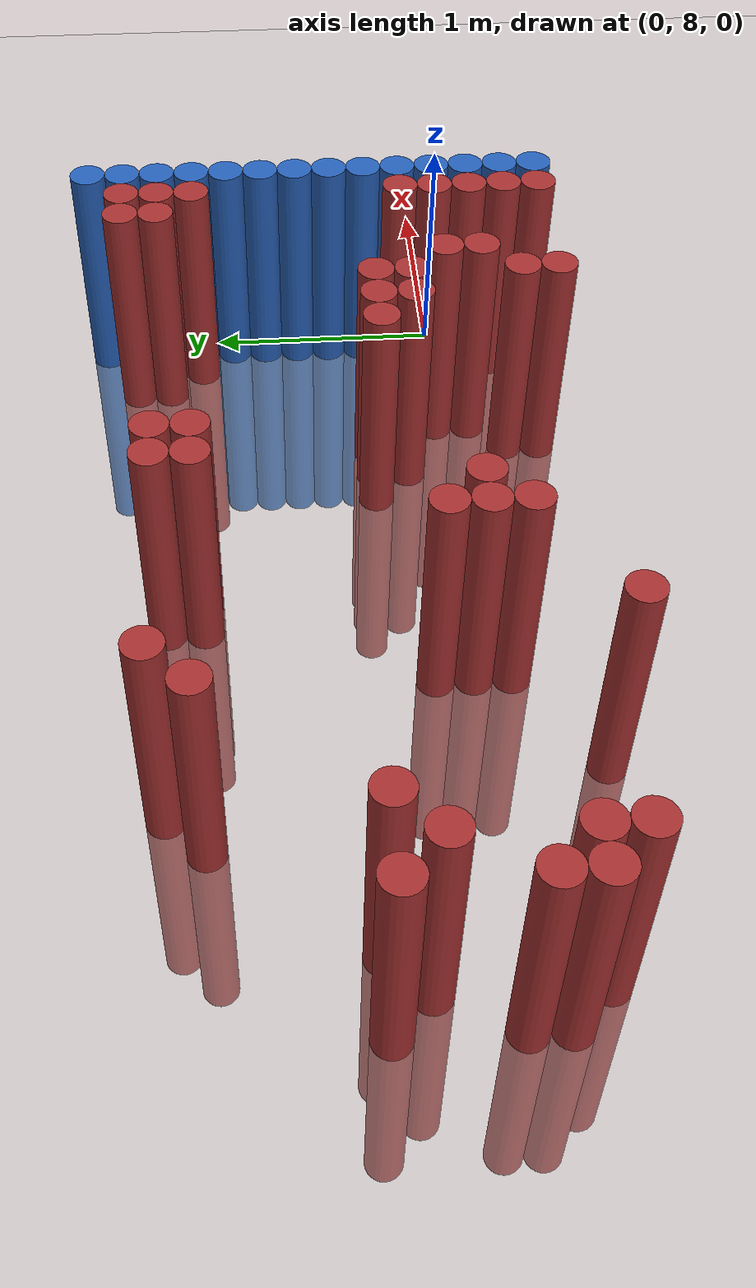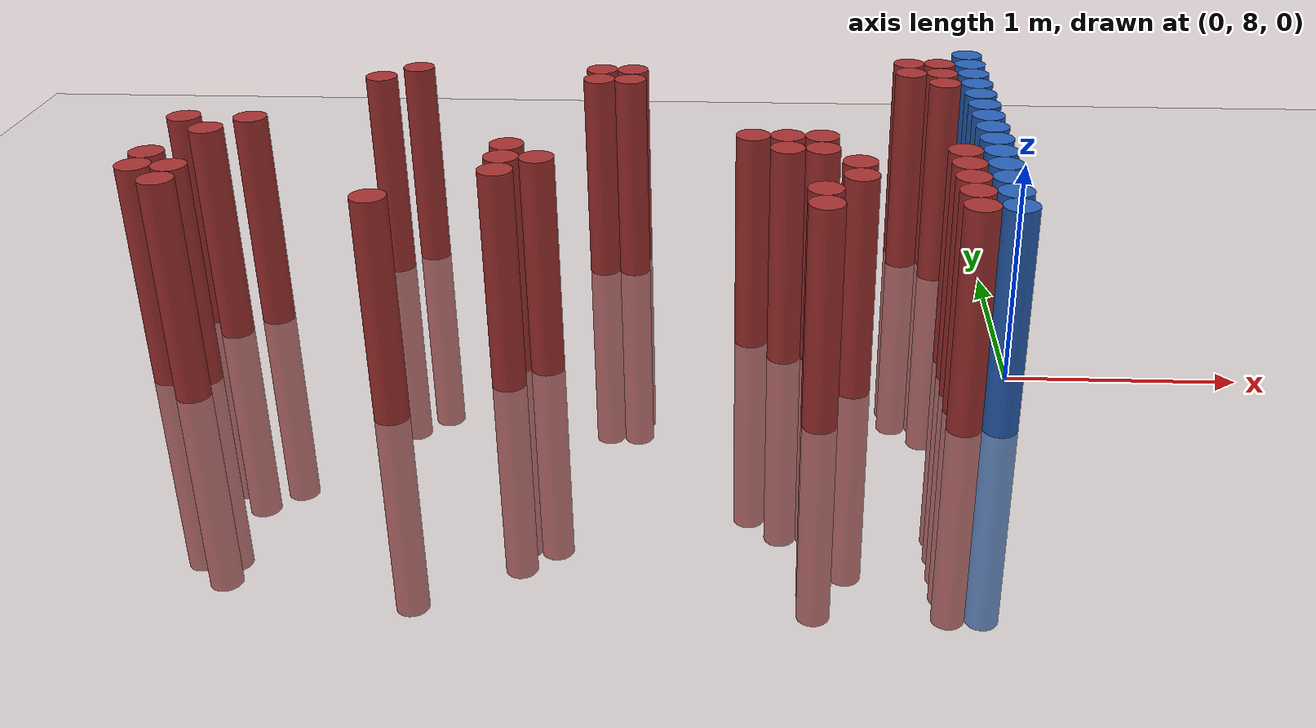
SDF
<sdf version="1.6">
 <world name="default">
  <model name="ground_plane">
   <static>1</static>
   <link name="link">
    <collision name="collision">
     <geometry><plane><normal>0 0 1</normal><size>100 100</size></plane></geometry>
     <surface><friction><ode><mu>100</mu><mu2>50</mu2></ode></friction></surface>
    </collision>
    <visual name="visual">
     <cast_shadows>0</cast_shadows>
     <geometry><plane><normal>0 0 1</normal><size>100 100</size></plane></geometry>
     <material>
      <script><uri>file://media/materials/scripts/gazebo.material</uri><name>Gazebo/Grey</name></script>
     </material>
    </visual>
   </link>
  </model>
  <model name="unit_cylinder_150">
   <static>1</static>
   <pose>-3.675000 7.875000 0.000000 0.000000 0.000000 0.000000</pose>
   <link name="link">
    <inertial>
     <mass>1</mass>
     <inertia><ixx>0.145833</ixx><ixy>0</ixy><ixz>0</ixz><iyy>0.145833</iyy><iyz>0</iyz><izz>0.125</izz></inertia>
    </inertial>
    <collision name="collision">
     <geometry><cylinder><radius>0.075000</radius><length>2</length></cylinder></geometry>
    </collision>
    <visual name="visual">
     <geometry><cylinder><radius>0.075000</radius><length>2</length></cylinder></geometry>
     <material>
      <ambient>0.648000 0.192000 0.192000 1</ambient>
      <diffuse>0.648000 0.192000 0.192000 1</diffuse>
     </material>
     <material>
      <script><name>Gazebo/Grey</name><uri>file://media/materials/scripts/gazebo.material</uri></script>
     </material>
    </visual>
   </link>
  </model>
  <model name="unit_cylinder_151">
   <static>1</static>
   <pose>-3.675000 8.025000 0.000000 0.000000 0.000000 0.000000</pose>
   <link name="link">
    <inertial>
     <mass>1</mass>
     <inertia><ixx>0.145833</ixx><ixy>0</ixy><ixz>0</ixz><iyy>0.145833</iyy><iyz>0</iyz><izz>0.125</izz></inertia>
    </inertial>
    <collision name="collision">
     <geometry><cylinder><radius>0.075000</radius><length>2</length></cylinder></geometry>
    </collision>
    <visual name="visual">
     <geometry><cylinder><radius>0.075000</radius><length>2</length></cylinder></geometry>
     <material>
      <ambient>0.648000 0.192000 0.192000 1</ambient>
      <diffuse>0.648000 0.192000 0.192000 1</diffuse>
     </material>
     <material>
      <script><name>Gazebo/Grey</name><uri>file://media/materials/scripts/gazebo.material</uri></script>
     </material>
    </visual>
   </link>
  </model>
  <model name="unit_cylinder_152">
   <static>1</static>
   <pose>-3.675000 8.475000 0.000000 0.000000 0.000000 0.000000</pose>
   <link name="link">
    <inertial>
     <mass>1</mass>
     <inertia><ixx>0.145833</ixx><ixy>0</ixy><ixz>0</ixz><iyy>0.145833</iyy><iyz>0</iyz><izz>0.125</izz></inertia>
    </inertial>
    <collision name="collision">
     <geometry><cylinder><radius>0.075000</radius><length>2</length></cylinder></geometry>
    </collision>
    <visual name="visual">
     <geometry><cylinder><radius>0.075000</radius><length>2</length></cylinder></geometry>
     <material>
      <ambient>0.648000 0.192000 0.192000 1</ambient>
      <diffuse>0.648000 0.192000 0.192000 1</diffuse>
     </material>
     <material>
      <script><name>Gazebo/Grey</name><uri>file://media/materials/scripts/gazebo.material</uri></script>
     </material>
    </visual>
   </link>
  </model>
  <model name="unit_cylinder_159">
   <static>1</static>
   <pose>-3.525000 7.725000 0.000000 0.000000 0.000000 0.000000</pose>
   <link name="link">
    <inertial>
     <mass>1</mass>
     <inertia><ixx>0.145833</ixx><ixy>0</ixy><ixz>0</ixz><iyy>0.145833</iyy><iyz>0</iyz><izz>0.125</izz></inertia>
    </inertial>
    <collision name="collision">
     <geometry><cylinder><radius>0.075000</radius><length>2</length></cylinder></geometry>
    </collision>
    <visual name="visual">
     <geometry><cylinder><radius>0.075000</radius><length>2</length></cylinder></geometry>
     <material>
      <ambient>0.648000 0.192000 0.192000 1</ambient>
      <diffuse>0.648000 0.192000 0.192000 1</diffuse>
     </material>
     <material>
      <script><name>Gazebo/Grey</name><uri>file://media/materials/scripts/gazebo.material</uri></script>
     </material>
    </visual>
   </link>
  </model>
  <model name="unit_cylinder_160">
   <static>1</static>
   <pose>-3.525000 7.875000 0.000000 0.000000 0.000000 0.000000</pose>
   <link name="link">
    <inertial>
     <mass>1</mass>
     <inertia><ixx>0.145833</ixx><ixy>0</ixy><ixz>0</ixz><iyy>0.145833</iyy><iyz>0</iyz><izz>0.125</izz></inertia>
    </inertial>
    <collision name="collision">
     <geometry><cylinder><radius>0.075000</radius><length>2</length></cylinder></geometry>
    </collision>
    <visual name="visual">
     <geometry><cylinder><radius>0.075000</radius><length>2</length></cylinder></geometry>
     <material>
      <ambient>0.648000 0.192000 0.192000 1</ambient>
      <diffuse>0.648000 0.192000 0.192000 1</diffuse>
     </material>
     <material>
      <script><name>Gazebo/Grey</name><uri>file://media/materials/scripts/gazebo.material</uri></script>
     </material>
    </visual>
   </link>
  </model>
  <model name="unit_cylinder_161">
   <static>1</static>
   <pose>-3.525000 8.325000 0.000000 0.000000 0.000000 0.000000</pose>
   <link name="link">
    <inertial>
     <mass>1</mass>
     <inertia><ixx>0.145833</ixx><ixy>0</ixy><ixz>0</ixz><iyy>0.145833</iyy><iyz>0</iyz><izz>0.125</izz></inertia>
    </inertial>
    <collision name="collision">
     <geometry><cylinder><radius>0.075000</radius><length>2</length></cylinder></geometry>
    </collision>
    <visual name="visual">
     <geometry><cylinder><radius>0.075000</radius><length>2</length></cylinder></geometry>
     <material>
      <ambient>0.648000 0.192000 0.192000 1</ambient>
      <diffuse>0.648000 0.192000 0.192000 1</diffuse>
     </material>
     <material>
      <script><name>Gazebo/Grey</name><uri>file://media/materials/scripts/gazebo.material</uri></script>
     </material>
    </visual>
   </link>
  </model>
  <model name="unit_cylinder_165">
   <static>1</static>
   <pose>-3.375000 8.475000 0.000000 0.000000 0.000000 0.000000</pose>
   <link name="link">
    <inertial>
     <mass>1</mass>
     <inertia><ixx>0.145833</ixx><ixy>0</ixy><ixz>0</ixz><iyy>0.145833</iyy><iyz>0</iyz><izz>0.125</izz></inertia>
    </inertial>
    <collision name="collision">
     <geometry><cylinder><radius>0.075000</radius><length>2</length></cylinder></geometry>
    </collision>
    <visual name="visual">
     <geometry><cylinder><radius>0.075000</radius><length>2</length></cylinder></geometry>
     <material>
      <ambient>0.648000 0.192000 0.192000 1</ambient>
      <diffuse>0.648000 0.192000 0.192000 1</diffuse>
     </material>
     <material>
      <script><name>Gazebo/Grey</name><uri>file://media/materials/scripts/gazebo.material</uri></script>
     </material>
    </visual>
   </link>
  </model>
  <model name="unit_cylinder_166">
   <static>1</static>
   <pose>-2.925000 9.075000 0.000000 0.000000 0.000000 0.000000</pose>
   <link name="link">
    <inertial>
     <mass>1</mass>
     <inertia><ixx>0.145833</ixx><ixy>0</ixy><ixz>0</ixz><iyy>0.145833</iyy><iyz>0</iyz><izz>0.125</izz></inertia>
    </inertial>
    <collision name="collision">
     <geometry><cylinder><radius>0.075000</radius><length>2</length></cylinder></geometry>
    </collision>
    <visual name="visual">
     <geometry><cylinder><radius>0.075000</radius><length>2</length></cylinder></geometry>
     <material>
      <ambient>0.648000 0.192000 0.192000 1</ambient>
      <diffuse>0.648000 0.192000 0.192000 1</diffuse>
     </material>
     <material>
      <script><name>Gazebo/Grey</name><uri>file://media/materials/scripts/gazebo.material</uri></script>
     </material>
    </visual>
   </link>
  </model>
  <model name="unit_cylinder_168">
   <static>1</static>
   <pose>-2.775000 9.225000 0.000000 0.000000 0.000000 0.000000</pose>
   <link name="link">
    <inertial>
     <mass>1</mass>
     <inertia><ixx>0.145833</ixx><ixy>0</ixy><ixz>0</ixz><iyy>0.145833</iyy><iyz>0</iyz><izz>0.125</izz></inertia>
    </inertial>
    <collision name="collision">
     <geometry><cylinder><radius>0.075000</radius><length>2</length></cylinder></geometry>
    </collision>
    <visual name="visual">
     <geometry><cylinder><radius>0.075000</radius><length>2</length></cylinder></geometry>
     <material>
      <ambient>0.648000 0.192000 0.192000 1</ambient>
      <diffuse>0.648000 0.192000 0.192000 1</diffuse>
     </material>
     <material>
      <script><name>Gazebo/Grey</name><uri>file://media/materials/scripts/gazebo.material</uri></script>
     </material>
    </visual>
   </link>
  </model>
  <model name="unit_cylinder_170">
   <static>1</static>
   <pose>-2.625000 7.575000 0.000000 0.000000 0.000000 0.000000</pose>
   <link name="link">
    <inertial>
     <mass>1</mass>
     <inertia><ixx>0.145833</ixx><ixy>0</ixy><ixz>0</ixz><iyy>0.145833</iyy><iyz>0</iyz><izz>0.125</izz></inertia>
    </inertial>
    <collision name="collision">
     <geometry><cylinder><radius>0.075000</radius><length>2</length></cylinder></geometry>
    </collision>
    <visual name="visual">
     <geometry><cylinder><radius>0.075000</radius><length>2</length></cylinder></geometry>
     <material>
      <ambient>0.648000 0.192000 0.192000 1</ambient>
      <diffuse>0.648000 0.192000 0.192000 1</diffuse>
     </material>
     <material>
      <script><name>Gazebo/Grey</name><uri>file://media/materials/scripts/gazebo.material</uri></script>
     </material>
    </visual>
   </link>
  </model>
  <model name="unit_cylinder_178">
   <static>1</static>
   <pose>-2.175000 7.875000 0.000000 0.000000 0.000000 0.000000</pose>
   <link name="link">
    <inertial>
     <mass>1</mass>
     <inertia><ixx>0.145833</ixx><ixy>0</ixy><ixz>0</ixz><iyy>0.145833</iyy><iyz>0</iyz><izz>0.125</izz></inertia>
    </inertial>
    <collision name="collision">
     <geometry><cylinder><radius>0.075000</radius><length>2</length></cylinder></geometry>
    </collision>
    <visual name="visual">
     <geometry><cylinder><radius>0.075000</radius><length>2</length></cylinder></geometry>
     <material>
      <ambient>0.648000 0.192000 0.192000 1</ambient>
      <diffuse>0.648000 0.192000 0.192000 1</diffuse>
     </material>
     <material>
      <script><name>Gazebo/Grey</name><uri>file://media/materials/scripts/gazebo.material</uri></script>
     </material>
    </visual>
   </link>
  </model>
  <model name="unit_cylinder_179">
   <static>1</static>
   <pose>-2.175000 8.025000 0.000000 0.000000 0.000000 0.000000</pose>
   <link name="link">
    <inertial>
     <mass>1</mass>
     <inertia><ixx>0.145833</ixx><ixy>0</ixy><ixz>0</ixz><iyy>0.145833</iyy><iyz>0</iyz><izz>0.125</izz></inertia>
    </inertial>
    <collision name="collision">
     <geometry><cylinder><radius>0.075000</radius><length>2</length></cylinder></geometry>
    </collision>
    <visual name="visual">
     <geometry><cylinder><radius>0.075000</radius><length>2</length></cylinder></geometry>
     <material>
      <ambient>0.648000 0.192000 0.192000 1</ambient>
      <diffuse>0.648000 0.192000 0.192000 1</diffuse>
     </material>
     <material>
      <script><name>Gazebo/Grey</name><uri>file://media/materials/scripts/gazebo.material</uri></script>
     </material>
    </visual>
   </link>
  </model>
  <model name="unit_cylinder_180">
   <static>1</static>
   <pose>-2.175000 8.175000 0.000000 0.000000 0.000000 0.000000</pose>
   <link name="link">
    <inertial>
     <mass>1</mass>
     <inertia><ixx>0.145833</ixx><ixy>0</ixy><ixz>0</ixz><iyy>0.145833</iyy><iyz>0</iyz><izz>0.125</izz></inertia>
    </inertial>
    <collision name="collision">
     <geometry><cylinder><radius>0.075000</radius><length>2</length></cylinder></geometry>
    </collision>
    <visual name="visual">
     <geometry><cylinder><radius>0.075000</radius><length>2</length></cylinder></geometry>
     <material>
      <ambient>0.648000 0.192000 0.192000 1</ambient>
      <diffuse>0.648000 0.192000 0.192000 1</diffuse>
     </material>
     <material>
      <script><name>Gazebo/Grey</name><uri>file://media/materials/scripts/gazebo.material</uri></script>
     </material>
    </visual>
   </link>
  </model>
  <model name="unit_cylinder_182">
   <static>1</static>
   <pose>-2.025000 8.025000 0.000000 0.000000 0.000000 0.000000</pose>
   <link name="link">
    <inertial>
     <mass>1</mass>
     <inertia><ixx>0.145833</ixx><ixy>0</ixy><ixz>0</ixz><iyy>0.145833</iyy><iyz>0</iyz><izz>0.125</izz></inertia>
    </inertial>
    <collision name="collision">
     <geometry><cylinder><radius>0.075000</radius><length>2</length></cylinder></geometry>
    </collision>
    <visual name="visual">
     <geometry><cylinder><radius>0.075000</radius><length>2</length></cylinder></geometry>
     <material>
      <ambient>0.648000 0.192000 0.192000 1</ambient>
      <diffuse>0.648000 0.192000 0.192000 1</diffuse>
     </material>
     <material>
      <script><name>Gazebo/Grey</name><uri>file://media/materials/scripts/gazebo.material</uri></script>
     </material>
    </visual>
   </link>
  </model>
  <model name="unit_cylinder_183">
   <static>1</static>
   <pose>-1.875000 9.075000 0.000000 0.000000 0.000000 0.000000</pose>
   <link name="link">
    <inertial>
     <mass>1</mass>
     <inertia><ixx>0.145833</ixx><ixy>0</ixy><ixz>0</ixz><iyy>0.145833</iyy><iyz>0</iyz><izz>0.125</izz></inertia>
    </inertial>
    <collision name="collision">
     <geometry><cylinder><radius>0.075000</radius><length>2</length></cylinder></geometry>
    </collision>
    <visual name="visual">
     <geometry><cylinder><radius>0.075000</radius><length>2</length></cylinder></geometry>
     <material>
      <ambient>0.648000 0.192000 0.192000 1</ambient>
      <diffuse>0.648000 0.192000 0.192000 1</diffuse>
     </material>
     <material>
      <script><name>Gazebo/Grey</name><uri>file://media/materials/scripts/gazebo.material</uri></script>
     </material>
    </visual>
   </link>
  </model>
  <model name="unit_cylinder_184">
   <static>1</static>
   <pose>-1.875000 9.225000 0.000000 0.000000 0.000000 0.000000</pose>
   <link name="link">
    <inertial>
     <mass>1</mass>
     <inertia><ixx>0.145833</ixx><ixy>0</ixy><ixz>0</ixz><iyy>0.145833</iyy><iyz>0</iyz><izz>0.125</izz></inertia>
    </inertial>
    <collision name="collision">
     <geometry><cylinder><radius>0.075000</radius><length>2</length></cylinder></geometry>
    </collision>
    <visual name="visual">
     <geometry><cylinder><radius>0.075000</radius><length>2</length></cylinder></geometry>
     <material>
      <ambient>0.648000 0.192000 0.192000 1</ambient>
      <diffuse>0.648000 0.192000 0.192000 1</diffuse>
     </material>
     <material>
      <script><name>Gazebo/Grey</name><uri>file://media/materials/scripts/gazebo.material</uri></script>
     </material>
    </visual>
   </link>
  </model>
  <model name="unit_cylinder_185">
   <static>1</static>
   <pose>-1.725000 9.075000 0.000000 0.000000 0.000000 0.000000</pose>
   <link name="link">
    <inertial>
     <mass>1</mass>
     <inertia><ixx>0.145833</ixx><ixy>0</ixy><ixz>0</ixz><iyy>0.145833</iyy><iyz>0</iyz><izz>0.125</izz></inertia>
    </inertial>
    <collision name="collision">
     <geometry><cylinder><radius>0.075000</radius><length>2</length></cylinder></geometry>
    </collision>
    <visual name="visual">
     <geometry><cylinder><radius>0.075000</radius><length>2</length></cylinder></geometry>
     <material>
      <ambient>0.648000 0.192000 0.192000 1</ambient>
      <diffuse>0.648000 0.192000 0.192000 1</diffuse>
     </material>
     <material>
      <script><name>Gazebo/Grey</name><uri>file://media/materials/scripts/gazebo.material</uri></script>
     </material>
    </visual>
   </link>
  </model>
  <model name="unit_cylinder_186">
   <static>1</static>
   <pose>-1.725000 9.225000 0.000000 0.000000 0.000000 0.000000</pose>
   <link name="link">
    <inertial>
     <mass>1</mass>
     <inertia><ixx>0.145833</ixx><ixy>0</ixy><ixz>0</ixz><iyy>0.145833</iyy><iyz>0</iyz><izz>0.125</izz></inertia>
    </inertial>
    <collision name="collision">
     <geometry><cylinder><radius>0.075000</radius><length>2</length></cylinder></geometry>
    </collision>
    <visual name="visual">
     <geometry><cylinder><radius>0.075000</radius><length>2</length></cylinder></geometry>
     <material>
      <ambient>0.648000 0.192000 0.192000 1</ambient>
      <diffuse>0.648000 0.192000 0.192000 1</diffuse>
     </material>
     <material>
      <script><name>Gazebo/Grey</name><uri>file://media/materials/scripts/gazebo.material</uri></script>
     </material>
    </visual>
   </link>
  </model>
  <model name="unit_cylinder_188">
   <static>1</static>
   <pose>-1.125000 8.325000 0.000000 0.000000 0.000000 0.000000</pose>
   <link name="link">
    <inertial>
     <mass>1</mass>
     <inertia><ixx>0.145833</ixx><ixy>0</ixy><ixz>0</ixz><iyy>0.145833</iyy><iyz>0</iyz><izz>0.125</izz></inertia>
    </inertial>
    <collision name="collision">
     <geometry><cylinder><radius>0.075000</radius><length>2</length></cylinder></geometry>
    </collision>
    <visual name="visual">
     <geometry><cylinder><radius>0.075000</radius><length>2</length></cylinder></geometry>
     <material>
      <ambient>0.648000 0.192000 0.192000 1</ambient>
      <diffuse>0.648000 0.192000 0.192000 1</diffuse>
     </material>
     <material>
      <script><name>Gazebo/Grey</name><uri>file://media/materials/scripts/gazebo.material</uri></script>
     </material>
    </visual>
   </link>
  </model>
  <model name="unit_cylinder_189">
   <static>1</static>
   <pose>-0.975000 8.175000 0.000000 0.000000 0.000000 0.000000</pose>
   <link name="link">
    <inertial>
     <mass>1</mass>
     <inertia><ixx>0.145833</ixx><ixy>0</ixy><ixz>0</ixz><iyy>0.145833</iyy><iyz>0</iyz><izz>0.125</izz></inertia>
    </inertial>
    <collision name="collision">
     <geometry><cylinder><radius>0.075000</radius><length>2</length></cylinder></geometry>
    </collision>
    <visual name="visual">
     <geometry><cylinder><radius>0.075000</radius><length>2</length></cylinder></geometry>
     <material>
      <ambient>0.648000 0.192000 0.192000 1</ambient>
      <diffuse>0.648000 0.192000 0.192000 1</diffuse>
     </material>
     <material>
      <script><name>Gazebo/Grey</name><uri>file://media/materials/scripts/gazebo.material</uri></script>
     </material>
    </visual>
   </link>
  </model>
  <model name="unit_cylinder_190">
   <static>1</static>
   <pose>-0.975000 8.325000 0.000000 0.000000 0.000000 0.000000</pose>
   <link name="link">
    <inertial>
     <mass>1</mass>
     <inertia><ixx>0.145833</ixx><ixy>0</ixy><ixz>0</ixz><iyy>0.145833</iyy><iyz>0</iyz><izz>0.125</izz></inertia>
    </inertial>
    <collision name="collision">
     <geometry><cylinder><radius>0.075000</radius><length>2</length></cylinder></geometry>
    </collision>
    <visual name="visual">
     <geometry><cylinder><radius>0.075000</radius><length>2</length></cylinder></geometry>
     <material>
      <ambient>0.648000 0.192000 0.192000 1</ambient>
      <diffuse>0.648000 0.192000 0.192000 1</diffuse>
     </material>
     <material>
      <script><name>Gazebo/Grey</name><uri>file://media/materials/scripts/gazebo.material</uri></script>
     </material>
    </visual>
   </link>
  </model>
  <model name="unit_cylinder_193">
   <static>1</static>
   <pose>-0.825000 7.575000 0.000000 0.000000 0.000000 0.000000</pose>
   <link name="link">
    <inertial>
     <mass>1</mass>
     <inertia><ixx>0.145833</ixx><ixy>0</ixy><ixz>0</ixz><iyy>0.145833</iyy><iyz>0</iyz><izz>0.125</izz></inertia>
    </inertial>
    <collision name="collision">
     <geometry><cylinder><radius>0.075000</radius><length>2</length></cylinder></geometry>
    </collision>
    <visual name="visual">
     <geometry><cylinder><radius>0.075000</radius><length>2</length></cylinder></geometry>
     <material>
      <ambient>0.648000 0.192000 0.192000 1</ambient>
      <diffuse>0.648000 0.192000 0.192000 1</diffuse>
     </material>
     <material>
      <script><name>Gazebo/Grey</name><uri>file://media/materials/scripts/gazebo.material</uri></script>
     </material>
    </visual>
   </link>
  </model>
  <model name="unit_cylinder_194">
   <static>1</static>
   <pose>-0.825000 7.725000 0.000000 0.000000 0.000000 0.000000</pose>
   <link name="link">
    <inertial>
     <mass>1</mass>
     <inertia><ixx>0.145833</ixx><ixy>0</ixy><ixz>0</ixz><iyy>0.145833</iyy><iyz>0</iyz><izz>0.125</izz></inertia>
    </inertial>
    <collision name="collision">
     <geometry><cylinder><radius>0.075000</radius><length>2</length></cylinder></geometry>
    </collision>
    <visual name="visual">
     <geometry><cylinder><radius>0.075000</radius><length>2</length></cylinder></geometry>
     <material>
      <ambient>0.648000 0.192000 0.192000 1</ambient>
      <diffuse>0.648000 0.192000 0.192000 1</diffuse>
     </material>
     <material>
      <script><name>Gazebo/Grey</name><uri>file://media/materials/scripts/gazebo.material</uri></script>
     </material>
    </visual>
   </link>
  </model>
  <model name="unit_cylinder_195">
   <static>1</static>
   <pose>-0.825000 8.175000 0.000000 0.000000 0.000000 0.000000</pose>
   <link name="link">
    <inertial>
     <mass>1</mass>
     <inertia><ixx>0.145833</ixx><ixy>0</ixy><ixz>0</ixz><iyy>0.145833</iyy><iyz>0</iyz><izz>0.125</izz></inertia>
    </inertial>
    <collision name="collision">
     <geometry><cylinder><radius>0.075000</radius><length>2</length></cylinder></geometry>
    </collision>
    <visual name="visual">
     <geometry><cylinder><radius>0.075000</radius><length>2</length></cylinder></geometry>
     <material>
      <ambient>0.648000 0.192000 0.192000 1</ambient>
      <diffuse>0.648000 0.192000 0.192000 1</diffuse>
     </material>
     <material>
      <script><name>Gazebo/Grey</name><uri>file://media/materials/scripts/gazebo.material</uri></script>
     </material>
    </visual>
   </link>
  </model>
  <model name="unit_cylinder_196">
   <static>1</static>
   <pose>-0.825000 8.325000 0.000000 0.000000 0.000000 0.000000</pose>
   <link name="link">
    <inertial>
     <mass>1</mass>
     <inertia><ixx>0.145833</ixx><ixy>0</ixy><ixz>0</ixz><iyy>0.145833</iyy><iyz>0</iyz><izz>0.125</izz></inertia>
    </inertial>
    <collision name="collision">
     <geometry><cylinder><radius>0.075000</radius><length>2</length></cylinder></geometry>
    </collision>
    <visual name="visual">
     <geometry><cylinder><radius>0.075000</radius><length>2</length></cylinder></geometry>
     <material>
      <ambient>0.648000 0.192000 0.192000 1</ambient>
      <diffuse>0.648000 0.192000 0.192000 1</diffuse>
     </material>
     <material>
      <script><name>Gazebo/Grey</name><uri>file://media/materials/scripts/gazebo.material</uri></script>
     </material>
    </visual>
   </link>
  </model>
  <model name="unit_cylinder_197">
   <static>1</static>
   <pose>-0.675000 7.875000 0.000000 0.000000 0.000000 0.000000</pose>
   <link name="link">
    <inertial>
     <mass>1</mass>
     <inertia><ixx>0.145833</ixx><ixy>0</ixy><ixz>0</ixz><iyy>0.145833</iyy><iyz>0</iyz><izz>0.125</izz></inertia>
    </inertial>
    <collision name="collision">
     <geometry><cylinder><radius>0.075000</radius><length>2</length></cylinder></geometry>
    </collision>
    <visual name="visual">
     <geometry><cylinder><radius>0.075000</radius><length>2</length></cylinder></geometry>
     <material>
      <ambient>0.648000 0.192000 0.192000 1</ambient>
      <diffuse>0.648000 0.192000 0.192000 1</diffuse>
     </material>
     <material>
      <script><name>Gazebo/Grey</name><uri>file://media/materials/scripts/gazebo.material</uri></script>
     </material>
    </visual>
   </link>
  </model>
  <model name="unit_cylinder_198">
   <static>1</static>
   <pose>-0.675000 8.025000 0.000000 0.000000 0.000000 0.000000</pose>
   <link name="link">
    <inertial>
     <mass>1</mass>
     <inertia><ixx>0.145833</ixx><ixy>0</ixy><ixz>0</ixz><iyy>0.145833</iyy><iyz>0</iyz><izz>0.125</izz></inertia>
    </inertial>
    <collision name="collision">
     <geometry><cylinder><radius>0.075000</radius><length>2</length></cylinder></geometry>
    </collision>
    <visual name="visual">
     <geometry><cylinder><radius>0.075000</radius><length>2</length></cylinder></geometry>
     <material>
      <ambient>0.648000 0.192000 0.192000 1</ambient>
      <diffuse>0.648000 0.192000 0.192000 1</diffuse>
     </material>
     <material>
      <script><name>Gazebo/Grey</name><uri>file://media/materials/scripts/gazebo.material</uri></script>
     </material>
    </visual>
   </link>
  </model>
  <model name="unit_cylinder_209">
   <static>1</static>
   <pose>-0.375000 9.225000 0.000000 0.000000 0.000000 0.000000</pose>
   <link name="link">
    <inertial>
     <mass>1</mass>
     <inertia><ixx>0.145833</ixx><ixy>0</ixy><ixz>0</ixz><iyy>0.145833</iyy><iyz>0</iyz><izz>0.125</izz></inertia>
    </inertial>
    <collision name="collision">
     <geometry><cylinder><radius>0.075000</radius><length>2</length></cylinder></geometry>
    </collision>
    <visual name="visual">
     <geometry><cylinder><radius>0.075000</radius><length>2</length></cylinder></geometry>
     <material>
      <ambient>0.648000 0.192000 0.192000 1</ambient>
      <diffuse>0.648000 0.192000 0.192000 1</diffuse>
     </material>
     <material>
      <script><name>Gazebo/Grey</name><uri>file://media/materials/scripts/gazebo.material</uri></script>
     </material>
    </visual>
   </link>
  </model>
  <model name="unit_cylinder_210">
   <static>1</static>
   <pose>-0.375000 9.375000 0.000000 0.000000 0.000000 0.000000</pose>
   <link name="link">
    <inertial>
     <mass>1</mass>
     <inertia><ixx>0.145833</ixx><ixy>0</ixy><ixz>0</ixz><iyy>0.145833</iyy><iyz>0</iyz><izz>0.125</izz></inertia>
    </inertial>
    <collision name="collision">
     <geometry><cylinder><radius>0.075000</radius><length>2</length></cylinder></geometry>
    </collision>
    <visual name="visual">
     <geometry><cylinder><radius>0.075000</radius><length>2</length></cylinder></geometry>
     <material>
      <ambient>0.648000 0.192000 0.192000 1</ambient>
      <diffuse>0.648000 0.192000 0.192000 1</diffuse>
     </material>
     <material>
      <script><name>Gazebo/Grey</name><uri>file://media/materials/scripts/gazebo.material</uri></script>
     </material>
    </visual>
   </link>
  </model>
  <model name="unit_cylinder_218">
   <static>1</static>
   <pose>-0.225000 7.575000 0.000000 0.000000 0.000000 0.000000</pose>
   <link name="link">
    <inertial>
     <mass>1</mass>
     <inertia><ixx>0.145833</ixx><ixy>0</ixy><ixz>0</ixz><iyy>0.145833</iyy><iyz>0</iyz><izz>0.125</izz></inertia>
    </inertial>
    <collision name="collision">
     <geometry><cylinder><radius>0.075000</radius><length>2</length></cylinder></geometry>
    </collision>
    <visual name="visual">
     <geometry><cylinder><radius>0.075000</radius><length>2</length></cylinder></geometry>
     <material>
      <ambient>0.648000 0.192000 0.192000 1</ambient>
      <diffuse>0.648000 0.192000 0.192000 1</diffuse>
     </material>
     <material>
      <script><name>Gazebo/Grey</name><uri>file://media/materials/scripts/gazebo.material</uri></script>
     </material>
    </visual>
   </link>
  </model>
  <model name="unit_cylinder_219">
   <static>1</static>
   <pose>-0.225000 7.725000 0.000000 0.000000 0.000000 0.000000</pose>
   <link name="link">
    <inertial>
     <mass>1</mass>
     <inertia><ixx>0.145833</ixx><ixy>0</ixy><ixz>0</ixz><iyy>0.145833</iyy><iyz>0</iyz><izz>0.125</izz></inertia>
    </inertial>
    <collision name="collision">
     <geometry><cylinder><radius>0.075000</radius><length>2</length></cylinder></geometry>
    </collision>
    <visual name="visual">
     <geometry><cylinder><radius>0.075000</radius><length>2</length></cylinder></geometry>
     <material>
      <ambient>0.648000 0.192000 0.192000 1</ambient>
      <diffuse>0.648000 0.192000 0.192000 1</diffuse>
     </material>
     <material>
      <script><name>Gazebo/Grey</name><uri>file://media/materials/scripts/gazebo.material</uri></script>
     </material>
    </visual>
   </link>
  </model>
  <model name="unit_cylinder_220">
   <static>1</static>
   <pose>-0.225000 7.875000 0.000000 0.000000 0.000000 0.000000</pose>
   <link name="link">
    <inertial>
     <mass>1</mass>
     <inertia><ixx>0.145833</ixx><ixy>0</ixy><ixz>0</ixz><iyy>0.145833</iyy><iyz>0</iyz><izz>0.125</izz></inertia>
    </inertial>
    <collision name="collision">
     <geometry><cylinder><radius>0.075000</radius><length>2</length></cylinder></geometry>
    </collision>
    <visual name="visual">
     <geometry><cylinder><radius>0.075000</radius><length>2</length></cylinder></geometry>
     <material>
      <ambient>0.648000 0.192000 0.192000 1</ambient>
      <diffuse>0.648000 0.192000 0.192000 1</diffuse>
     </material>
     <material>
      <script><name>Gazebo/Grey</name><uri>file://media/materials/scripts/gazebo.material</uri></script>
     </material>
    </visual>
   </link>
  </model>
  <model name="unit_cylinder_221">
   <static>1</static>
   <pose>-0.225000 8.025000 0.000000 0.000000 0.000000 0.000000</pose>
   <link name="link">
    <inertial>
     <mass>1</mass>
     <inertia><ixx>0.145833</ixx><ixy>0</ixy><ixz>0</ixz><iyy>0.145833</iyy><iyz>0</iyz><izz>0.125</izz></inertia>
    </inertial>
    <collision name="collision">
     <geometry><cylinder><radius>0.075000</radius><length>2</length></cylinder></geometry>
    </collision>
    <visual name="visual">
     <geometry><cylinder><radius>0.075000</radius><length>2</length></cylinder></geometry>
     <material>
      <ambient>0.648000 0.192000 0.192000 1</ambient>
      <diffuse>0.648000 0.192000 0.192000 1</diffuse>
     </material>
     <material>
      <script><name>Gazebo/Grey</name><uri>file://media/materials/scripts/gazebo.material</uri></script>
     </material>
    </visual>
   </link>
  </model>
  <model name="unit_cylinder_222">
   <static>1</static>
   <pose>-0.225000 8.175000 0.000000 0.000000 0.000000 0.000000</pose>
   <link name="link">
    <inertial>
     <mass>1</mass>
     <inertia><ixx>0.145833</ixx><ixy>0</ixy><ixz>0</ixz><iyy>0.145833</iyy><iyz>0</iyz><izz>0.125</izz></inertia>
    </inertial>
    <collision name="collision">
     <geometry><cylinder><radius>0.075000</radius><length>2</length></cylinder></geometry>
    </collision>
    <visual name="visual">
     <geometry><cylinder><radius>0.075000</radius><length>2</length></cylinder></geometry>
     <material>
      <ambient>0.648000 0.192000 0.192000 1</ambient>
      <diffuse>0.648000 0.192000 0.192000 1</diffuse>
     </material>
     <material>
      <script><name>Gazebo/Grey</name><uri>file://media/materials/scripts/gazebo.material</uri></script>
     </material>
    </visual>
   </link>
  </model>
  <model name="unit_cylinder_223">
   <static>1</static>
   <pose>-0.225000 9.075000 0.000000 0.000000 0.000000 0.000000</pose>
   <link name="link">
    <inertial>
     <mass>1</mass>
     <inertia><ixx>0.145833</ixx><ixy>0</ixy><ixz>0</ixz><iyy>0.145833</iyy><iyz>0</iyz><izz>0.125</izz></inertia>
    </inertial>
    <collision name="collision">
     <geometry><cylinder><radius>0.075000</radius><length>2</length></cylinder></geometry>
    </collision>
    <visual name="visual">
     <geometry><cylinder><radius>0.075000</radius><length>2</length></cylinder></geometry>
     <material>
      <ambient>0.648000 0.192000 0.192000 1</ambient>
      <diffuse>0.648000 0.192000 0.192000 1</diffuse>
     </material>
     <material>
      <script><name>Gazebo/Grey</name><uri>file://media/materials/scripts/gazebo.material</uri></script>
     </material>
    </visual>
   </link>
  </model>
  <model name="unit_cylinder_224">
   <static>1</static>
   <pose>-0.225000 9.225000 0.000000 0.000000 0.000000 0.000000</pose>
   <link name="link">
    <inertial>
     <mass>1</mass>
     <inertia><ixx>0.145833</ixx><ixy>0</ixy><ixz>0</ixz><iyy>0.145833</iyy><iyz>0</iyz><izz>0.125</izz></inertia>
    </inertial>
    <collision name="collision">
     <geometry><cylinder><radius>0.075000</radius><length>2</length></cylinder></geometry>
    </collision>
    <visual name="visual">
     <geometry><cylinder><radius>0.075000</radius><length>2</length></cylinder></geometry>
     <material>
      <ambient>0.648000 0.192000 0.192000 1</ambient>
      <diffuse>0.648000 0.192000 0.192000 1</diffuse>
     </material>
     <material>
      <script><name>Gazebo/Grey</name><uri>file://media/materials/scripts/gazebo.material</uri></script>
     </material>
    </visual>
   </link>
  </model>
  <model name="unit_cylinder_225">
   <static>1</static>
   <pose>-0.225000 9.375000 0.000000 0.000000 0.000000 0.000000</pose>
   <link name="link">
    <inertial>
     <mass>1</mass>
     <inertia><ixx>0.145833</ixx><ixy>0</ixy><ixz>0</ixz><iyy>0.145833</iyy><iyz>0</iyz><izz>0.125</izz></inertia>
    </inertial>
    <collision name="collision">
     <geometry><cylinder><radius>0.075000</radius><length>2</length></cylinder></geometry>
    </collision>
    <visual name="visual">
     <geometry><cylinder><radius>0.075000</radius><length>2</length></cylinder></geometry>
     <material>
      <ambient>0.648000 0.192000 0.192000 1</ambient>
      <diffuse>0.648000 0.192000 0.192000 1</diffuse>
     </material>
     <material>
      <script><name>Gazebo/Grey</name><uri>file://media/materials/scripts/gazebo.material</uri></script>
     </material>
    </visual>
   </link>
  </model>
  <model name="unit_cylinder_242">
   <static>1</static>
   <pose>-0.075000 7.575000 0.000000 0.000000 0.000000 0.000000</pose>
   <link name="link">
    <inertial>
     <mass>1</mass>
     <inertia><ixx>0.145833</ixx><ixy>0</ixy><ixz>0</ixz><iyy>0.145833</iyy><iyz>0</iyz><izz>0.125</izz></inertia>
    </inertial>
    <collision name="collision">
     <geometry><cylinder><radius>0.075000</radius><length>2</length></cylinder></geometry>
    </collision>
    <visual name="visual">
     <geometry><cylinder><radius>0.075000</radius><length>2</length></cylinder></geometry>
     <material>
      <ambient>0.152000 0.379000 0.720000 1</ambient>
      <diffuse>0.152000 0.379000 0.720000 1</diffuse>
     </material>
     <material>
      <script><name>Gazebo/Grey</name><uri>file://media/materials/scripts/gazebo.material</uri></script>
     </material>
    </visual>
   </link>
  </model>
  <model name="unit_cylinder_243">
   <static>1</static>
   <pose>-0.075000 7.725000 0.000000 0.000000 0.000000 0.000000</pose>
   <link name="link">
    <inertial>
     <mass>1</mass>
     <inertia><ixx>0.145833</ixx><ixy>0</ixy><ixz>0</ixz><iyy>0.145833</iyy><iyz>0</iyz><izz>0.125</izz></inertia>
    </inertial>
    <collision name="collision">
     <geometry><cylinder><radius>0.075000</radius><length>2</length></cylinder></geometry>
    </collision>
    <visual name="visual">
     <geometry><cylinder><radius>0.075000</radius><length>2</length></cylinder></geometry>
     <material>
      <ambient>0.152000 0.379000 0.720000 1</ambient>
      <diffuse>0.152000 0.379000 0.720000 1</diffuse>
     </material>
     <material>
      <script><name>Gazebo/Grey</name><uri>file://media/materials/scripts/gazebo.material</uri></script>
     </material>
    </visual>
   </link>
  </model>
  <model name="unit_cylinder_244">
   <static>1</static>
   <pose>-0.075000 7.875000 0.000000 0.000000 0.000000 0.000000</pose>
   <link name="link">
    <inertial>
     <mass>1</mass>
     <inertia><ixx>0.145833</ixx><ixy>0</ixy><ixz>0</ixz><iyy>0.145833</iyy><iyz>0</iyz><izz>0.125</izz></inertia>
    </inertial>
    <collision name="collision">
     <geometry><cylinder><radius>0.075000</radius><length>2</length></cylinder></geometry>
    </collision>
    <visual name="visual">
     <geometry><cylinder><radius>0.075000</radius><length>2</length></cylinder></geometry>
     <material>
      <ambient>0.152000 0.379000 0.720000 1</ambient>
      <diffuse>0.152000 0.379000 0.720000 1</diffuse>
     </material>
     <material>
      <script><name>Gazebo/Grey</name><uri>file://media/materials/scripts/gazebo.material</uri></script>
     </material>
    </visual>
   </link>
  </model>
  <model name="unit_cylinder_245">
   <static>1</static>
   <pose>-0.075000 8.025000 0.000000 0.000000 0.000000 0.000000</pose>
   <link name="link">
    <inertial>
     <mass>1</mass>
     <inertia><ixx>0.145833</ixx><ixy>0</ixy><ixz>0</ixz><iyy>0.145833</iyy><iyz>0</iyz><izz>0.125</izz></inertia>
    </inertial>
    <collision name="collision">
     <geometry><cylinder><radius>0.075000</radius><length>2</length></cylinder></geometry>
    </collision>
    <visual name="visual">
     <geometry><cylinder><radius>0.075000</radius><length>2</length></cylinder></geometry>
     <material>
      <ambient>0.152000 0.379000 0.720000 1</ambient>
      <diffuse>0.152000 0.379000 0.720000 1</diffuse>
     </material>
     <material>
      <script><name>Gazebo/Grey</name><uri>file://media/materials/scripts/gazebo.material</uri></script>
     </material>
    </visual>
   </link>
  </model>
  <model name="unit_cylinder_246">
   <static>1</static>
   <pose>-0.075000 8.175000 0.000000 0.000000 0.000000 0.000000</pose>
   <link name="link">
    <inertial>
     <mass>1</mass>
     <inertia><ixx>0.145833</ixx><ixy>0</ixy><ixz>0</ixz><iyy>0.145833</iyy><iyz>0</iyz><izz>0.125</izz></inertia>
    </inertial>
    <collision name="collision">
     <geometry><cylinder><radius>0.075000</radius><length>2</length></cylinder></geometry>
    </collision>
    <visual name="visual">
     <geometry><cylinder><radius>0.075000</radius><length>2</length></cylinder></geometry>
     <material>
      <ambient>0.152000 0.379000 0.720000 1</ambient>
      <diffuse>0.152000 0.379000 0.720000 1</diffuse>
     </material>
     <material>
      <script><name>Gazebo/Grey</name><uri>file://media/materials/scripts/gazebo.material</uri></script>
     </material>
    </visual>
   </link>
  </model>
  <model name="unit_cylinder_247">
   <static>1</static>
   <pose>-0.075000 8.325000 0.000000 0.000000 0.000000 0.000000</pose>
   <link name="link">
    <inertial>
     <mass>1</mass>
     <inertia><ixx>0.145833</ixx><ixy>0</ixy><ixz>0</ixz><iyy>0.145833</iyy><iyz>0</iyz><izz>0.125</izz></inertia>
    </inertial>
    <collision name="collision">
     <geometry><cylinder><radius>0.075000</radius><length>2</length></cylinder></geometry>
    </collision>
    <visual name="visual">
     <geometry><cylinder><radius>0.075000</radius><length>2</length></cylinder></geometry>
     <material>
      <ambient>0.152000 0.379000 0.720000 1</ambient>
      <diffuse>0.152000 0.379000 0.720000 1</diffuse>
     </material>
     <material>
      <script><name>Gazebo/Grey</name><uri>file://media/materials/scripts/gazebo.material</uri></script>
     </material>
    </visual>
   </link>
  </model>
  <model name="unit_cylinder_248">
   <static>1</static>
   <pose>-0.075000 8.475000 0.000000 0.000000 0.000000 0.000000</pose>
   <link name="link">
    <inertial>
     <mass>1</mass>
     <inertia><ixx>0.145833</ixx><ixy>0</ixy><ixz>0</ixz><iyy>0.145833</iyy><iyz>0</iyz><izz>0.125</izz></inertia>
    </inertial>
    <collision name="collision">
     <geometry><cylinder><radius>0.075000</radius><length>2</length></cylinder></geometry>
    </collision>
    <visual name="visual">
     <geometry><cylinder><radius>0.075000</radius><length>2</length></cylinder></geometry>
     <material>
      <ambient>0.152000 0.379000 0.720000 1</ambient>
      <diffuse>0.152000 0.379000 0.720000 1</diffuse>
     </material>
     <material>
      <script><name>Gazebo/Grey</name><uri>file://media/materials/scripts/gazebo.material</uri></script>
     </material>
    </visual>
   </link>
  </model>
  <model name="unit_cylinder_249">
   <static>1</static>
   <pose>-0.075000 8.625000 0.000000 0.000000 0.000000 0.000000</pose>
   <link name="link">
    <inertial>
     <mass>1</mass>
     <inertia><ixx>0.145833</ixx><ixy>0</ixy><ixz>0</ixz><iyy>0.145833</iyy><iyz>0</iyz><izz>0.125</izz></inertia>
    </inertial>
    <collision name="collision">
     <geometry><cylinder><radius>0.075000</radius><length>2</length></cylinder></geometry>
    </collision>
    <visual name="visual">
     <geometry><cylinder><radius>0.075000</radius><length>2</length></cylinder></geometry>
     <material>
      <ambient>0.152000 0.379000 0.720000 1</ambient>
      <diffuse>0.152000 0.379000 0.720000 1</diffuse>
     </material>
     <material>
      <script><name>Gazebo/Grey</name><uri>file://media/materials/scripts/gazebo.material</uri></script>
     </material>
    </visual>
   </link>
  </model>
  <model name="unit_cylinder_250">
   <static>1</static>
   <pose>-0.075000 8.775000 0.000000 0.000000 0.000000 0.000000</pose>
   <link name="link">
    <inertial>
     <mass>1</mass>
     <inertia><ixx>0.145833</ixx><ixy>0</ixy><ixz>0</ixz><iyy>0.145833</iyy><iyz>0</iyz><izz>0.125</izz></inertia>
    </inertial>
    <collision name="collision">
     <geometry><cylinder><radius>0.075000</radius><length>2</length></cylinder></geometry>
    </collision>
    <visual name="visual">
     <geometry><cylinder><radius>0.075000</radius><length>2</length></cylinder></geometry>
     <material>
      <ambient>0.152000 0.379000 0.720000 1</ambient>
      <diffuse>0.152000 0.379000 0.720000 1</diffuse>
     </material>
     <material>
      <script><name>Gazebo/Grey</name><uri>file://media/materials/scripts/gazebo.material</uri></script>
     </material>
    </visual>
   </link>
  </model>
  <model name="unit_cylinder_251">
   <static>1</static>
   <pose>-0.075000 8.925000 0.000000 0.000000 0.000000 0.000000</pose>
   <link name="link">
    <inertial>
     <mass>1</mass>
     <inertia><ixx>0.145833</ixx><ixy>0</ixy><ixz>0</ixz><iyy>0.145833</iyy><iyz>0</iyz><izz>0.125</izz></inertia>
    </inertial>
    <collision name="collision">
     <geometry><cylinder><radius>0.075000</radius><length>2</length></cylinder></geometry>
    </collision>
    <visual name="visual">
     <geometry><cylinder><radius>0.075000</radius><length>2</length></cylinder></geometry>
     <material>
      <ambient>0.152000 0.379000 0.720000 1</ambient>
      <diffuse>0.152000 0.379000 0.720000 1</diffuse>
     </material>
     <material>
      <script><name>Gazebo/Grey</name><uri>file://media/materials/scripts/gazebo.material</uri></script>
     </material>
    </visual>
   </link>
  </model>
  <model name="unit_cylinder_252">
   <static>1</static>
   <pose>-0.075000 9.075000 0.000000 0.000000 0.000000 0.000000</pose>
   <link name="link">
    <inertial>
     <mass>1</mass>
     <inertia><ixx>0.145833</ixx><ixy>0</ixy><ixz>0</ixz><iyy>0.145833</iyy><iyz>0</iyz><izz>0.125</izz></inertia>
    </inertial>
    <collision name="collision">
     <geometry><cylinder><radius>0.075000</radius><length>2</length></cylinder></geometry>
    </collision>
    <visual name="visual">
     <geometry><cylinder><radius>0.075000</radius><length>2</length></cylinder></geometry>
     <material>
      <ambient>0.152000 0.379000 0.720000 1</ambient>
      <diffuse>0.152000 0.379000 0.720000 1</diffuse>
     </material>
     <material>
      <script><name>Gazebo/Grey</name><uri>file://media/materials/scripts/gazebo.material</uri></script>
     </material>
    </visual>
   </link>
  </model>
  <model name="unit_cylinder_253">
   <static>1</static>
   <pose>-0.075000 9.225000 0.000000 0.000000 0.000000 0.000000</pose>
   <link name="link">
    <inertial>
     <mass>1</mass>
     <inertia><ixx>0.145833</ixx><ixy>0</ixy><ixz>0</ixz><iyy>0.145833</iyy><iyz>0</iyz><izz>0.125</izz></inertia>
    </inertial>
    <collision name="collision">
     <geometry><cylinder><radius>0.075000</radius><length>2</length></cylinder></geometry>
    </collision>
    <visual name="visual">
     <geometry><cylinder><radius>0.075000</radius><length>2</length></cylinder></geometry>
     <material>
      <ambient>0.152000 0.379000 0.720000 1</ambient>
      <diffuse>0.152000 0.379000 0.720000 1</diffuse>
     </material>
     <material>
      <script><name>Gazebo/Grey</name><uri>file://media/materials/scripts/gazebo.material</uri></script>
     </material>
    </visual>
   </link>
  </model>
  <model name="unit_cylinder_254">
   <static>1</static>
   <pose>-0.075000 9.375000 0.000000 0.000000 0.000000 0.000000</pose>
   <link name="link">
    <inertial>
     <mass>1</mass>
     <inertia><ixx>0.145833</ixx><ixy>0</ixy><ixz>0</ixz><iyy>0.145833</iyy><iyz>0</iyz><izz>0.125</izz></inertia>
    </inertial>
    <collision name="collision">
     <geometry><cylinder><radius>0.075000</radius><length>2</length></cylinder></geometry>
    </collision>
    <visual name="visual">
     <geometry><cylinder><radius>0.075000</radius><length>2</length></cylinder></geometry>
     <material>
      <ambient>0.152000 0.379000 0.720000 1</ambient>
      <diffuse>0.152000 0.379000 0.720000 1</diffuse>
     </material>
     <material>
      <script><name>Gazebo/Grey</name><uri>file://media/materials/scripts/gazebo.material</uri></script>
     </material>
    </visual>
   </link>
  </model>
  <model name="unit_cylinder_255">
   <static>1</static>
   <pose>-0.075000 9.525000 0.000000 0.000000 0.000000 0.000000</pose>
   <link name="link">
    <inertial>
     <mass>1</mass>
     <inertia><ixx>0.145833</ixx><ixy>0</ixy><ixz>0</ixz><iyy>0.145833</iyy><iyz>0</iyz><izz>0.125</izz></inertia>
    </inertial>
    <collision name="collision">
     <geometry><cylinder><radius>0.075000</radius><length>2</length></cylinder></geometry>
    </collision>
    <visual name="visual">
     <geometry><cylinder><radius>0.075000</radius><length>2</length></cylinder></geometry>
     <material>
      <ambient>0.152000 0.379000 0.720000 1</ambient>
      <diffuse>0.152000 0.379000 0.720000 1</diffuse>
     </material>
     <material>
      <script><name>Gazebo/Grey</name><uri>file://media/materials/scripts/gazebo.material</uri></script>
     </material>
    </visual>
   </link>
  </model>
 </world>
</sdf>
